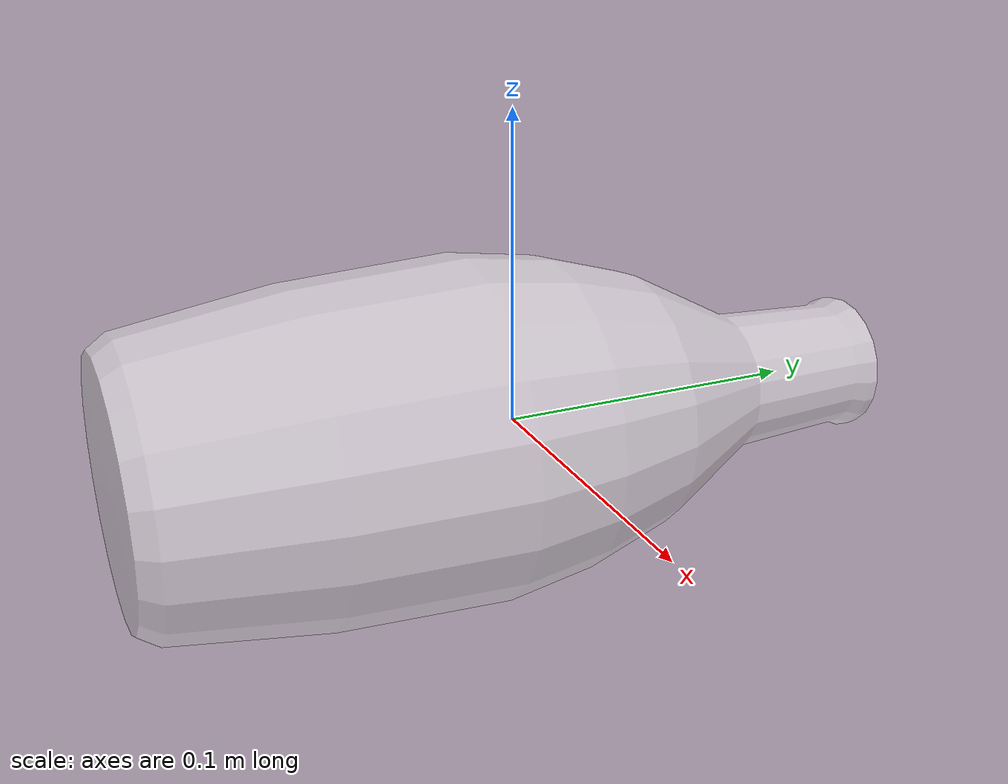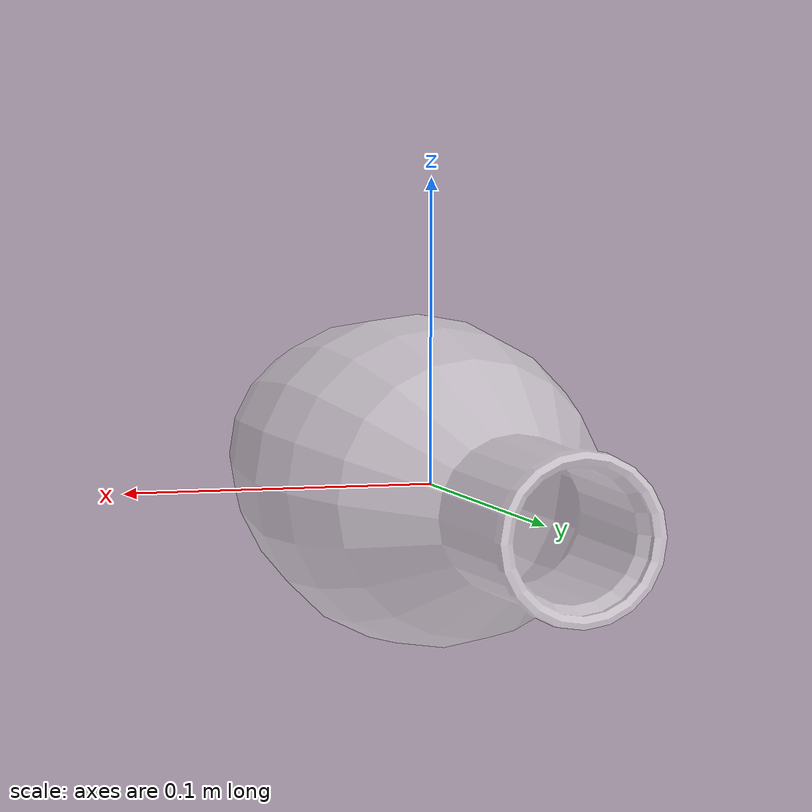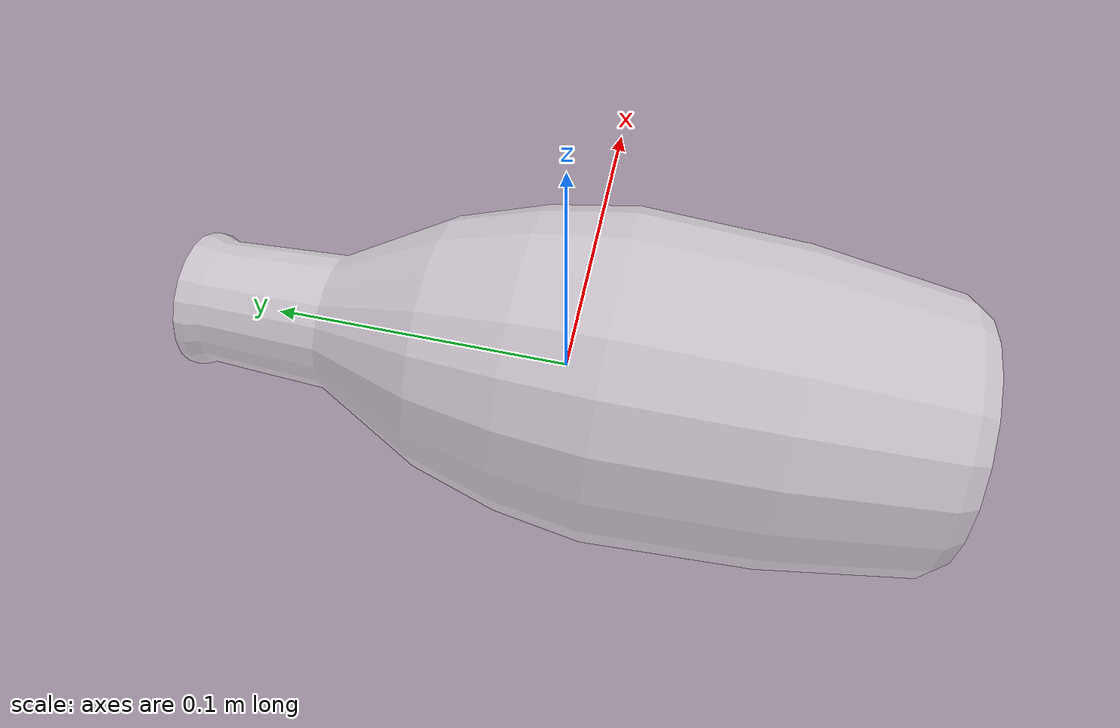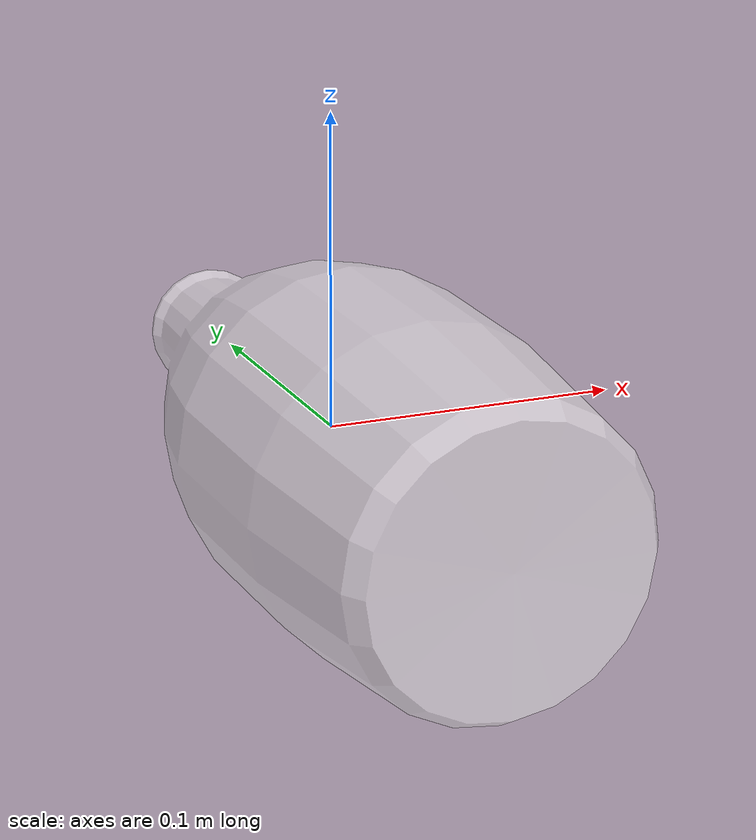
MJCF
<mujoco model="Bottle_1">
  <compiler autolimits="true" boundmass="0.01" angle="radian"/>
  <default>
    <default class="/">
      <default class="__VISUAL_MJT__">
        <geom contype="0" conaffinity="0" group="0"/>
      </default>
      <default class="__STRUCTURAL_MJT__">
        <geom contype="8" conaffinity="15" group="4" friction="0.90000000000000002 0.90000000000000002 0.001" solref="0.025000000000000001 1" solimp="0.998 0.998 0.001"/>
      </default>
      <default class="__DYNAMIC_MJT__">
        <geom contype="1" conaffinity="15" group="4" friction="0.90000000000000002 0.90000000000000002 0.001" solref="0.025000000000000001 1" solimp="0.998 0.998 0.001"/>
      </default>
    </default>
  </default>
  <asset>
    <material name="material_Glass_Detailed_White_Mat" class="/" specular="0.5" shininess="0.5" rgba="1 1 1 0.5"/>
    <mesh name="Bottle_1_bottle_1" class="/" file="Bottle_1_bottle_1/Bottle_1_bottle_1.obj" scale="1 1 1"/>
  </asset>
  <worldbody>
    <body name="Bottle_1">
      <joint name="Bottle_1_free" class="/" type="free" pos="0 0 0" axis="0 0 1" stiffness="0" range="0 0" armature="0" damping="0.10000000000000001" frictionloss="0"/>
      <body name="Bottle_1_bottle_1" pos="-0 -0.12669 0" quat="1 0 0 0">
        <geom name="Bottle_1_bottle_1" class="__VISUAL_MJT__" type="mesh" material="material_Glass_Detailed_White_Mat" shellinertia="false" mesh="Bottle_1_bottle_1"/>
        <geom name="Bottle_1_PrimitiveCollider_0" class="__DYNAMIC_MJT__" type="box" size="0.041778802871704102 0.08489043265581131 0.017283137887716293" rgba="0 1 0 1" pos="-0 0.084822490811347961 0" quat="1 0 0 0"/>
        <geom name="Bottle_1_PrimitiveCollider_1" class="__DYNAMIC_MJT__" type="box" size="0.041779916733503342 0.084890924394130707 0.017283648252487183" rgba="0 1 0 1" pos="-0 0.084822095930576324 0" quat="0.70710784196853638 0 0.70710575580596924 0"/>
        <geom name="Bottle_1_PrimitiveCollider_2" class="__DYNAMIC_MJT__" type="box" size="0.041779916733503342 0.084890924394130707 0.017283597961068153" rgba="0 1 0 1" pos="-0 0.084822095930576324 0" quat="0.92387980222702026 0 0.38268274068832397 0"/>
        <geom name="Bottle_1_PrimitiveCollider_3" class="__DYNAMIC_MJT__" type="box" size="0.041779916733503342 0.084890924394130707 0.017283648252487183" rgba="0 1 0 1" pos="-0 0.084822095930576324 0" quat="0.38268548250198364 0 0.92387866973876953 0"/>
        <geom name="Bottle_1_PrimitiveCollider_4" class="__DYNAMIC_MJT__" type="box" size="0.052321314811706543 0.066198863089084625 0.021644387394189835" rgba="0 1 0 1" pos="-0 0.081985525786876678 0" quat="1 0 0 0"/>
        <geom name="Bottle_1_PrimitiveCollider_5" class="__DYNAMIC_MJT__" type="box" size="0.052321318536996841 0.066199496388435364 0.021644441410899162" rgba="0 1 0 1" pos="-0 0.081984966993331909 0" quat="0.70710784196853638 0 0.70710575580596924 0"/>
        <geom name="Bottle_1_PrimitiveCollider_6" class="__DYNAMIC_MJT__" type="box" size="0.052321307361125946 0.066199496388435364 0.021644383668899536" rgba="0 1 0 1" pos="-0 0.081984952092170715 0" quat="0.92387980222702026 0 0.38268274068832397 0"/>
        <geom name="Bottle_1_PrimitiveCollider_7" class="__DYNAMIC_MJT__" type="box" size="0.052321314811706543 0.066199496388435364 0.021644435822963715" rgba="0 1 0 1" pos="-0 0.081984966993331909 0" quat="0.38268548250198364 0 0.92387866973876953 0"/>
        <geom name="Bottle_1_PrimitiveCollider_8" class="__DYNAMIC_MJT__" type="box" size="0.023647436872124672 0.027511896565556526 0.0097825173288583755" rgba="0 1 0 1" pos="-0 0.22593389451503754 0" quat="1 0 0 0"/>
        <geom name="Bottle_1_PrimitiveCollider_9" class="__DYNAMIC_MJT__" type="box" size="0.023647435009479523 0.02751229889690876 0.0097825285047292709" rgba="0 1 0 1" pos="-0 0.22593353688716888 0" quat="0.70710784196853638 0 0.70710575580596924 0"/>
        <geom name="Bottle_1_PrimitiveCollider_10" class="__DYNAMIC_MJT__" type="box" size="0.023647436872124672 0.02751229889690876 0.0097825173288583755" rgba="0 1 0 1" pos="-0 0.22593353688716888 0" quat="0.92387980222702026 0 0.38268274068832397 0"/>
        <geom name="Bottle_1_PrimitiveCollider_11" class="__DYNAMIC_MJT__" type="box" size="0.023647431284189224 0.02751229889690876 0.0097825275734066963" rgba="0 1 0 1" pos="-0 0.22593353688716888 0" quat="0.38268548250198364 0 0.92387866973876953 0"/>
        <geom name="Bottle_1_PrimitiveCollider_12" class="__DYNAMIC_MJT__" type="box" size="0.034649182111024857 0.016120657324790955 0.014333739876747131" rgba="0 1 0 1" pos="-0 0.18364886939525604 0" quat="1 0 0 0"/>
        <geom name="Bottle_1_PrimitiveCollider_13" class="__DYNAMIC_MJT__" type="box" size="0.034649178385734558 0.016120657324790955 0.014333813451230526" rgba="0 1 0 1" pos="-0 0.18364886939525604 0" quat="0.70710784196853638 0 0.70710575580596924 0"/>
        <geom name="Bottle_1_PrimitiveCollider_14" class="__DYNAMIC_MJT__" type="box" size="0.034649178385734558 0.016120657324790955 0.014333738945424557" rgba="0 1 0 1" pos="-0 0.18364886939525604 0" quat="0.92387980222702026 0 0.38268274068832397 0"/>
        <geom name="Bottle_1_PrimitiveCollider_15" class="__DYNAMIC_MJT__" type="box" size="0.03464917466044426 0.016120657324790955 0.014333808794617653" rgba="0 1 0 1" pos="-0 0.18364886939525604 0" quat="0.38268548250198364 0 0.92387866973876953 0"/>
      </body>
    </body>
  </worldbody>
</mujoco>
